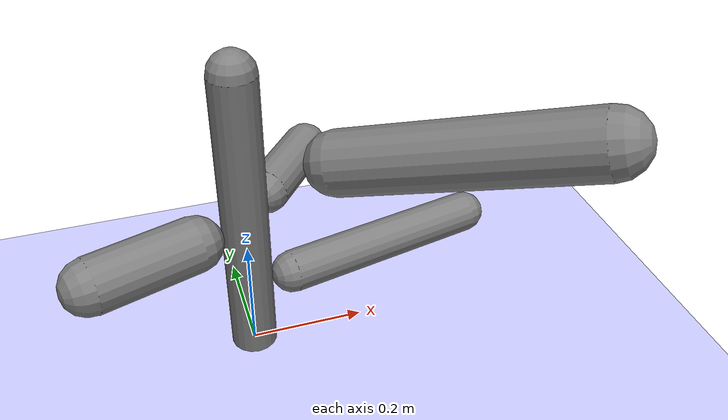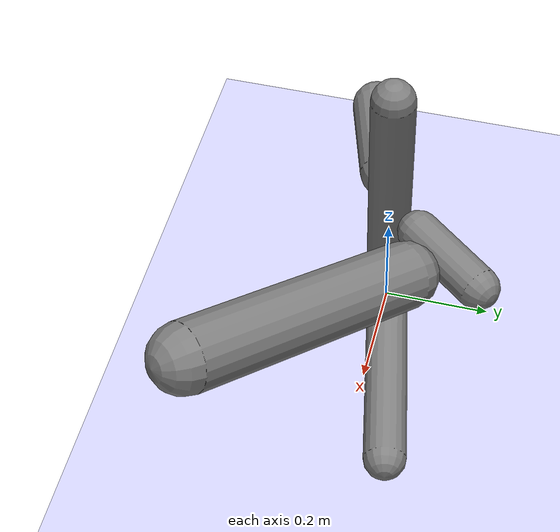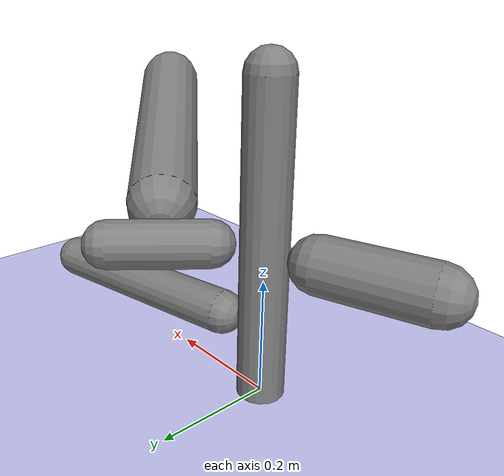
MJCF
<?xml version='1.0' encoding='UTF-8'?>
<mujoco model="robot_model">
  <worldbody>
    <light name="light" pos="0 -3 10" dir="0 0.5 -1" diffuse=".8 .8 .8" specular="0.1 0.1 0.1"/>
    <geom name="floor" type="plane" size="10.0 10.0 0.1" pos="0 0 0" rgba="0.8 0.8 1 1" contype="2" conaffinity="1"/>
    <body name="limb0" pos="0 0 0">
      <geom name="limb0_geom" type="capsule" fromto="0 0 0 0 0 0.5280392026809934" size="0.04" density="694.8887350385637" contype="1" conaffinity="2"/>
      <site type="sphere" size="0.01" name="limb0_site0" pos="0.052102187254630374 0.06492297335113346 0.266821152539449" quat="0.7071067811865476 -0.5514782239966858 0.44257402596341 0.0"/>
      <site type="sphere" size="0.01" name="limb0_site1" pos="0.07999375894356082 0.016603838336143532 0.119512722097653" quat="0.7071067811865476 -0.14370701995890695 0.6923498338372952 0.0"/>
      <site type="sphere" size="0.01" name="limb0_site2" pos="-0.08674721979597229 -0.027632492974188218 0.25312916052725526" quat="0.7071067811865476 0.21461672715809735 -0.6737504437282003 0.0"/>
      <freejoint name="limb0_root"/>
      <body name="limb1" pos="0.052102187254630374 0.06492297335113346 0.266821152539449" quat="0.7071067811865476 -0.5514782239966858 0.44257402596341 0.0">
        <geom name="limb1_geom" type="capsule" fromto="0 0 0 0 0 0.16136599457657547" size="0.03924440152628014" density="1063.8814954702987" contype="1" conaffinity="2"/>
        <site type="sphere" size="0.01" name="limb1_site0" pos="0.057378042192360146 -0.08583220095448735 0.07997658092785001" quat="0.7071067811865476 0.5878530016335616 0.3929743610853153 0.0"/>
        <body name="limb2" pos="0.057378042192360146 -0.08583220095448735 0.07997658092785001" quat="0.7071067811865476 0.5878530016335616 0.3929743610853153 0.0">
          <geom name="limb2_geom" type="capsule" fromto="0 0 0 0 0 0.46493007053566165" size="0.06" density="974.6337823020274" contype="1" conaffinity="2"/>
          <joint name="joint_limb1_limb2_0" type="hinge" axis="0 1 0" range="-72.76404303931349 72.76404303931349" damping="5.0"/>
        </body>
        <joint name="joint_limb0_limb1_0" type="hinge" axis="0 0 1" range="-59.96207299018732 59.96207299018732" damping="5.0"/>
      </body>
      <body name="limb3" pos="0.07999375894356082 0.016603838336143532 0.119512722097653" quat="0.7071067811865476 -0.14370701995890695 0.6923498338372952 0.0">
        <geom name="limb3_geom" type="capsule" fromto="0 0 0 0 0 0.3665782213840831" size="0.037698769375146074" density="1200.0" contype="1" conaffinity="2"/>
        <joint name="joint_limb0_limb3_0" type="hinge" axis="1 0 0" range="-97.29787056611062 97.29787056611062" damping="5.0"/>
      </body>
      <body name="limb4" pos="-0.08674721979597229 -0.027632492974188218 0.25312916052725526" quat="0.7071067811865476 0.21461672715809735 -0.6737504437282003 0.0">
        <geom name="limb4_geom" type="capsule" fromto="0 0 0 0 0 0.1756841044802058" size="0.04704193984257633" density="984.254461993807" contype="1" conaffinity="2"/>
        <joint name="joint_limb0_limb4_0" type="hinge" axis="0 0 1" range="-65.65785036981373 65.65785036981373" damping="5.0"/>
      </body>
    </body>
  </worldbody>
  <actuator>
    <position name="position_actuator_joint_limb0_limb1_0" joint="joint_limb0_limb1_0" gear="2.0" inheritrange="1" forcerange="-5.499922110006023 5.499922110006023" forcelimited="true" kp="100.0"/>
    <position name="position_actuator_joint_limb1_limb2_0" joint="joint_limb1_limb2_0" gear="1.9252471899661885" inheritrange="1" forcerange="-30.03340775200813 30.03340775200813" forcelimited="true" kp="100.0"/>
    <position name="position_actuator_joint_limb0_limb3_0" joint="joint_limb0_limb3_0" gear="0.523119764181743" inheritrange="1" forcerange="-11.166787209585365 11.166787209585365" forcelimited="true" kp="100.0"/>
    <position name="position_actuator_joint_limb0_limb4_0" joint="joint_limb0_limb4_0" gear="0.5685689044186975" inheritrange="1" forcerange="-8.156731254242125 8.156731254242125" forcelimited="true" kp="100.0"/>
  </actuator>
  <contact>
    <pair geom1="limb0_geom" geom2="limb1_geom"/>
    <pair geom1="limb1_geom" geom2="limb2_geom"/>
    <pair geom1="limb0_geom" geom2="limb3_geom"/>
    <pair geom1="limb0_geom" geom2="limb4_geom"/>
  </contact>
</mujoco>
